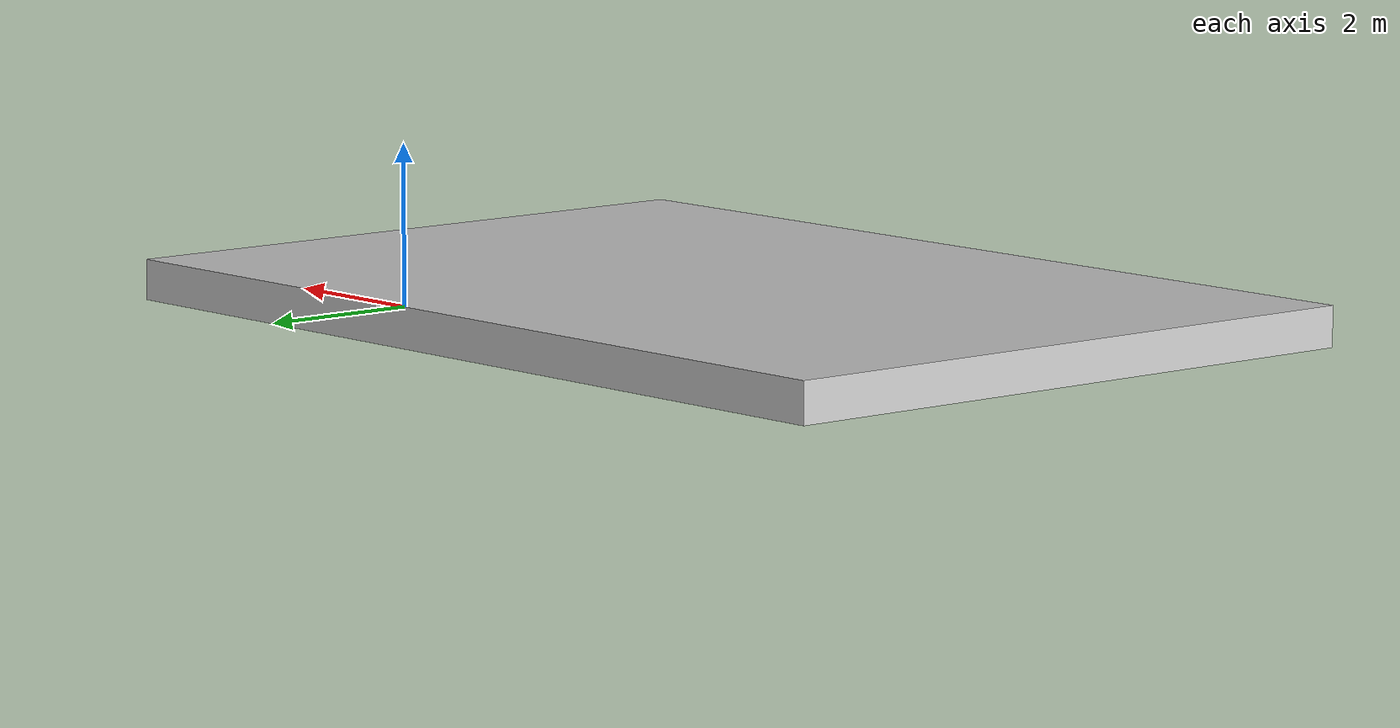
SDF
<?xml version="1.0"?>
<sdf version="1.6">
  <model name="RMUL27_world">
    <static>true</static>

    <link name="base_link">
      <pose>0 0 0.320105 0 0 0</pose>

      <visual name="visual">
        <geometry>
          <mesh>
            <uri>model://RMUL27_world/meshes/base_link.STL</uri>
          </mesh>
        </geometry>
        <material>
          <lighting>1</lighting>
          <ambient>0.6 0.6 0.6 1</ambient>
          <diffuse>0.8 0.8 0.8 1</diffuse>
          <specular>0.1 0.1 0.1 1</specular>
        </material>
        <cast_shadows>true</cast_shadows>
      </visual>

      <collision name="collision">
        <geometry>
          <mesh>
            <uri>model://RMUL27_world/meshes/base_link.STL</uri>
          </mesh>
        </geometry>
        <surface>
          <friction>
            <ode>
              <mu>1.0</mu>
              <mu2>1.0</mu2>
            </ode>
          </friction>
          <contact>
            <ode>
              <max_vel>0.1</max_vel>
              <min_depth>0.001</min_depth>
            </ode>
          </contact>
        </surface>
        <laser_retro>0</laser_retro>
      </collision>
    </link>
  </model>
</sdf>
